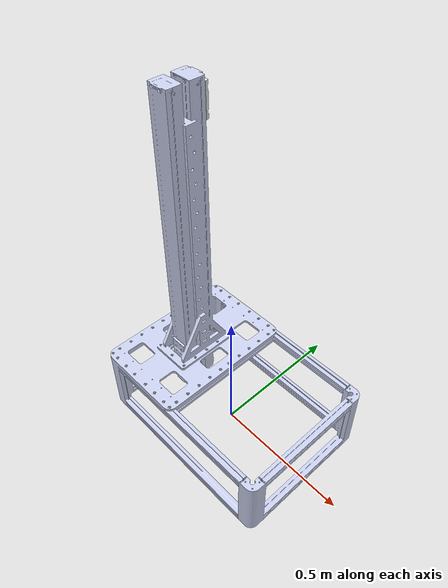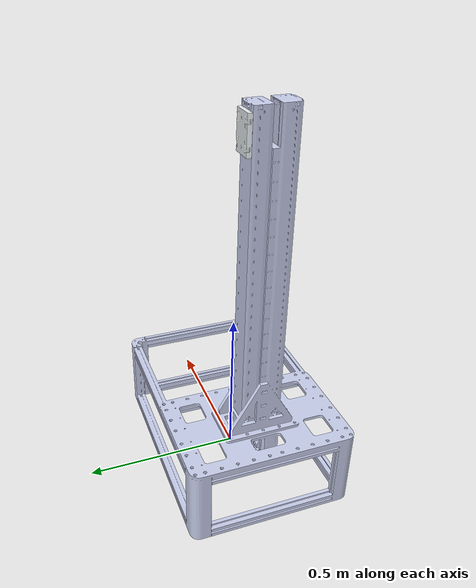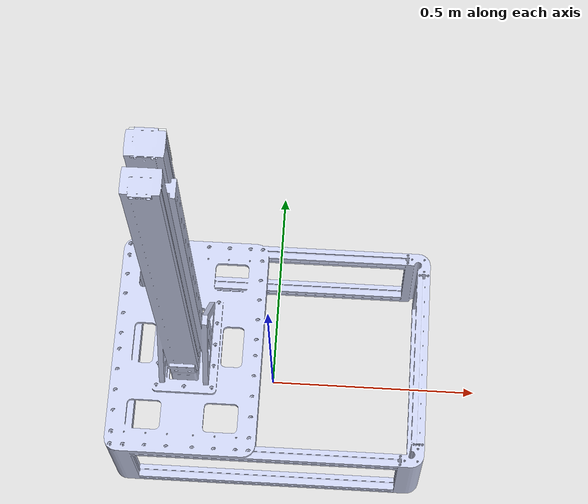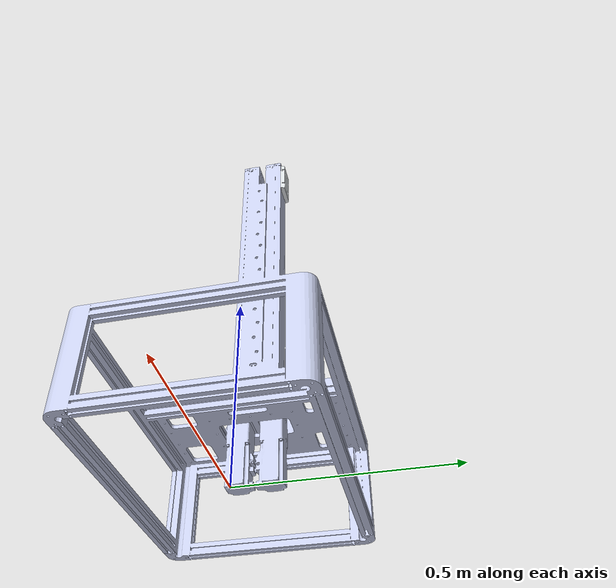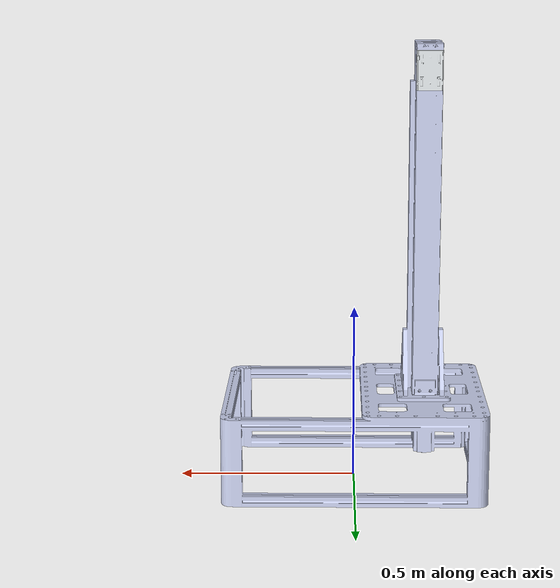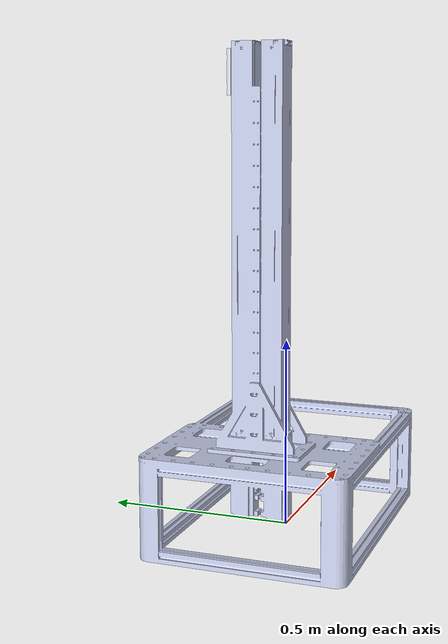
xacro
<?xml version="1.0"?>

<robot
  name="timda_body"
  xmlns:xacro="http://www.ros.org/wiki/xacro">

  <link
    name="base_link">
    <inertial>
      <origin
        xyz="0.0 0 0"
        rpy="0 0 0" />
      <mass
        value="2.072" />
      <inertia
        ixx="1"
        ixy="0"
        ixz="0"
        iyy="1"
        iyz="0"
        izz="1" />
    </inertial>
    <visual>
      <origin
        xyz="0 0 0"
        rpy="0 0 0" />
      <geometry>
        <mesh
          filename="package://timda_body/meshes/base_link.STL" />
      </geometry>
      <material
        name="">
        <color
          rgba="0.79216 0.81961 0.93333 1" />
      </material>
    </visual>
    <collision>
      <origin
        xyz="0 0 0"
        rpy="0 0 0" />
      <geometry>
        <mesh
          filename="package://timda_body/meshes/base_link.STL" />
      </geometry>
    </collision>
  </link>
  <link
    name="slide_right">
    <inertial>
      <origin
        xyz="1.5718E-05 -0.006626 2.4586E-06"
        rpy="0 0 0" />
      <mass
        value="0.24709" />
      <inertia
        ixx="1"
        ixy="0"
        ixz="0"
        iyy="1"
        iyz="0"
        izz="1" />
    </inertial>
    <visual>
      <origin
        xyz="0 0 0"
        rpy="0 0 0" />
      <geometry>
        <mesh
          filename="package://timda_body/meshes/slide_right.STL" />
      </geometry>
      <material
        name="">
        <color
          rgba="0.89804 0.91765 0.92941 1" />
      </material>
    </visual>
    <collision>
      <origin
        xyz="0 0 0"
        rpy="0 0 0" />
      <geometry>
        <mesh
          filename="package://timda_body/meshes/slide_right.STL" />
      </geometry>
    </collision>
  </link>
  <joint
    name="joint_right"
    type="prismatic">
    <origin
      xyz="-0.2 0.0765 1.1815"
      rpy="0 0 0" />
    <parent
      link="base_link" />
    <child
      link="slide_right" />
    <axis
      xyz="0 0 1" />
    <limit
      lower="-0.8"
      upper="0"
      effort="9000"
      velocity="6.5" />
    <dynamics damping="7"/>
  </joint>

</robot>
